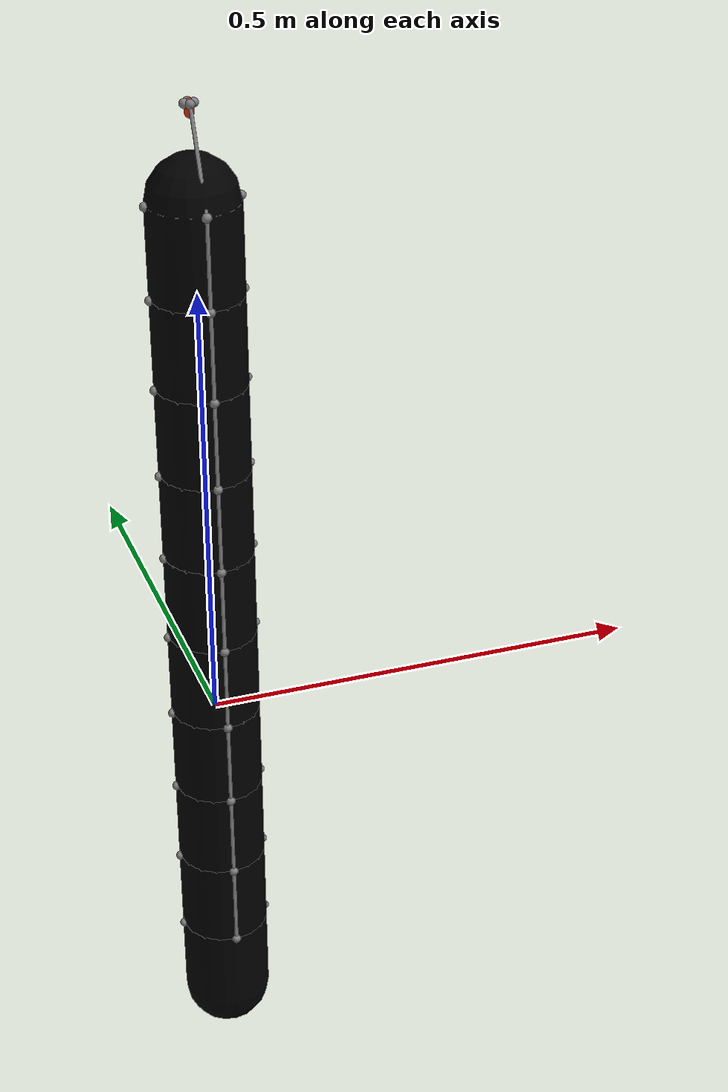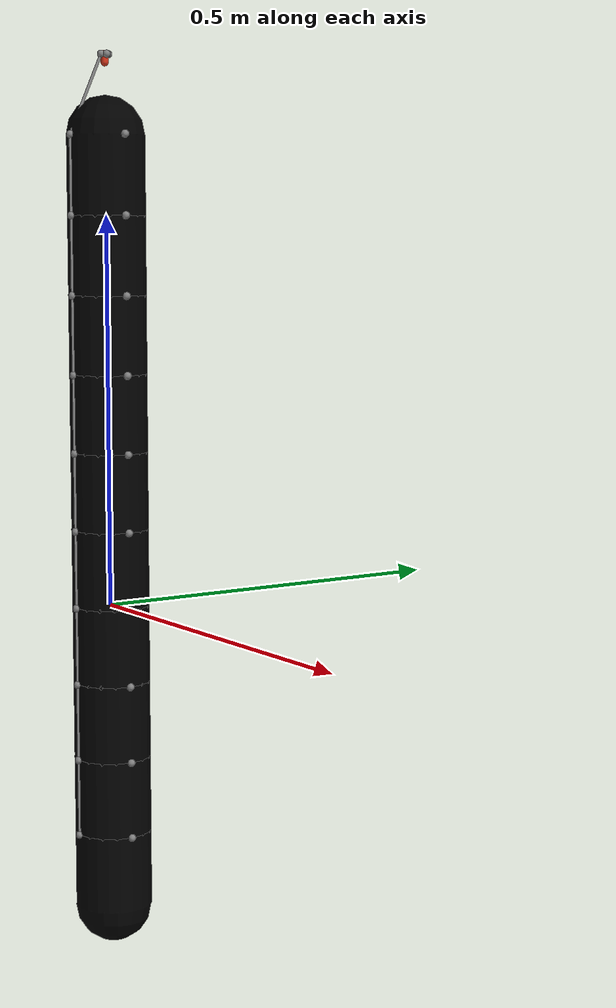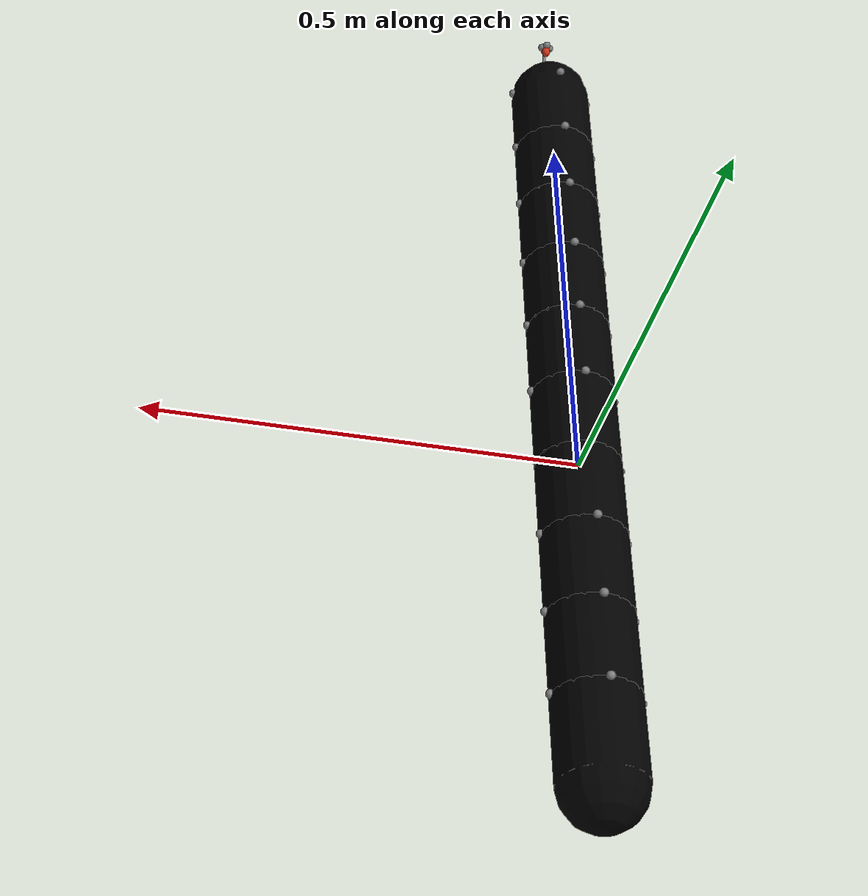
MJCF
<mujoco model="trunk">
        <compiler angle="radian"/>
        <extension>
            <plugin plugin="mujoco.elasticity.cable">
            <instance name="compositeactuated">
                <config key="twist" value="1e8"/>
                <config key="bend" value="1e8"/>
                <config key="vmax" value="0"/>
            </instance>
            </plugin>
        </extension>

        <asset>
            <texture type="skybox" builtin="gradient" rgb1=".6 .8 1" rgb2=".6 .8 1" width="1" height="1"/>
        </asset>

        <worldbody>
            <light pos="0 -1 -1" dir="0 -1 -1" diffuse="1 1 1"/>
            <body name="actuatedB_first" pos="0 0 0.7" quat="0 -0.707107 0 0.707107">
                <geom name="actuatedG0" size="0.005 0.005" pos="0.005 0 0" quat="0.707107 0 -0.707107 0" type="capsule" rgba="0.8 0.2 0.1 1"/>
                      <site name="cable_0_y_front" pos="0 0.005 0"/>
                    <site name="cable_0_y_back" pos="0 -0.005 0"/>
                    <site name="cable_0_z_front" pos="0 0 0.005"/>
                    <site name="cable_0_z_back" pos="0 0 -0.005"/>
        <body name="link_1" pos="0.1 0 0">
            <joint name="joint_1" pos="0 0 0" type="ball" group="3" actuatorfrclimited="false" armature="0.01" damping="0.25"/>
            <geom name="geom_1" size="0.05 0.05" density="0.1" pos="0.05 0 0" quat="0.707107 0 -0.707107 0" type="capsule" rgba="0 0 0 1"/>
            <site name="site_1_y_front" pos="0 0.05 0"/>
            <site name="site_1_y_back" pos="0 -0.05 0"/>
            <site name="site_1_z_front" pos="0 0 0.05"/>
            <site name="site_1_z_back" pos="0 0 -0.05"/>

        <body name="link_2" pos="0.1 0 0">
            <joint name="joint_2" pos="0 0 0" type="ball" group="3" actuatorfrclimited="false" armature="0.01" damping="0.25"/>
            <geom name="geom_2" size="0.05 0.05" density="0.1" pos="0.05 0 0" quat="0.707107 0 -0.707107 0" type="capsule" rgba="0 0 0 1"/>
            <site name="site_2_y_front" pos="0 0.05 0"/>
            <site name="site_2_y_back" pos="0 -0.05 0"/>
            <site name="site_2_z_front" pos="0 0 0.05"/>
            <site name="site_2_z_back" pos="0 0 -0.05"/>

        <body name="link_3" pos="0.1 0 0">
            <joint name="joint_3" pos="0 0 0" type="ball" group="3" actuatorfrclimited="false" armature="0.01" damping="0.25"/>
            <geom name="geom_3" size="0.05 0.05" density="0.1" pos="0.05 0 0" quat="0.707107 0 -0.707107 0" type="capsule" rgba="0 0 0 1"/>
            <site name="site_3_y_front" pos="0 0.05 0"/>
            <site name="site_3_y_back" pos="0 -0.05 0"/>
            <site name="site_3_z_front" pos="0 0 0.05"/>
            <site name="site_3_z_back" pos="0 0 -0.05"/>

        <body name="link_4" pos="0.1 0 0">
            <joint name="joint_4" pos="0 0 0" type="ball" group="3" actuatorfrclimited="false" armature="0.01" damping="0.25"/>
            <geom name="geom_4" size="0.05 0.05" density="0.1" pos="0.05 0 0" quat="0.707107 0 -0.707107 0" type="capsule" rgba="0 0 0 1"/>
            <site name="site_4_y_front" pos="0 0.05 0"/>
            <site name="site_4_y_back" pos="0 -0.05 0"/>
            <site name="site_4_z_front" pos="0 0 0.05"/>
            <site name="site_4_z_back" pos="0 0 -0.05"/>

        <body name="link_5" pos="0.1 0 0">
            <joint name="joint_5" pos="0 0 0" type="ball" group="3" actuatorfrclimited="false" armature="0.01" damping="0.25"/>
            <geom name="geom_5" size="0.05 0.05" density="0.1" pos="0.05 0 0" quat="0.707107 0 -0.707107 0" type="capsule" rgba="0 0 0 1"/>
            <site name="site_5_y_front" pos="0 0.05 0"/>
            <site name="site_5_y_back" pos="0 -0.05 0"/>
            <site name="site_5_z_front" pos="0 0 0.05"/>
            <site name="site_5_z_back" pos="0 0 -0.05"/>

        <body name="link_6" pos="0.1 0 0">
            <joint name="joint_6" pos="0 0 0" type="ball" group="3" actuatorfrclimited="false" armature="0.01" damping="0.25"/>
            <geom name="geom_6" size="0.05 0.05" density="0.1" pos="0.05 0 0" quat="0.707107 0 -0.707107 0" type="capsule" rgba="0 0 0 1"/>
            <site name="site_6_y_front" pos="0 0.05 0"/>
            <site name="site_6_y_back" pos="0 -0.05 0"/>
            <site name="site_6_z_front" pos="0 0 0.05"/>
            <site name="site_6_z_back" pos="0 0 -0.05"/>

        <body name="link_7" pos="0.1 0 0">
            <joint name="joint_7" pos="0 0 0" type="ball" group="3" actuatorfrclimited="false" armature="0.01" damping="0.25"/>
            <geom name="geom_7" size="0.05 0.05" density="0.1" pos="0.05 0 0" quat="0.707107 0 -0.707107 0" type="capsule" rgba="0 0 0 1"/>
            <site name="site_7_y_front" pos="0 0.05 0"/>
            <site name="site_7_y_back" pos="0 -0.05 0"/>
            <site name="site_7_z_front" pos="0 0 0.05"/>
            <site name="site_7_z_back" pos="0 0 -0.05"/>

        <body name="link_8" pos="0.1 0 0">
            <joint name="joint_8" pos="0 0 0" type="ball" group="3" actuatorfrclimited="false" armature="0.01" damping="0.25"/>
            <geom name="geom_8" size="0.05 0.05" density="0.1" pos="0.05 0 0" quat="0.707107 0 -0.707107 0" type="capsule" rgba="0 0 0 1"/>
            <site name="site_8_y_front" pos="0 0.05 0"/>
            <site name="site_8_y_back" pos="0 -0.05 0"/>
            <site name="site_8_z_front" pos="0 0 0.05"/>
            <site name="site_8_z_back" pos="0 0 -0.05"/>

        <body name="link_9" pos="0.1 0 0">
            <joint name="joint_9" pos="0 0 0" type="ball" group="3" actuatorfrclimited="false" armature="0.01" damping="0.25"/>
            <geom name="geom_9" size="0.05 0.05" density="0.1" pos="0.05 0 0" quat="0.707107 0 -0.707107 0" type="capsule" rgba="0 0 0 1"/>
            <site name="site_9_y_front" pos="0 0.05 0"/>
            <site name="site_9_y_back" pos="0 -0.05 0"/>
            <site name="site_9_z_front" pos="0 0 0.05"/>
            <site name="site_9_z_back" pos="0 0 -0.05"/>

        <body name="link_10" pos="0.1 0 0">
            <joint name="joint_10" pos="0 0 0" type="ball" group="3" actuatorfrclimited="false" armature="0.01" damping="0.25"/>
            <geom name="geom_10" size="0.05 0.05" density="0.1" pos="0.05 0 0" quat="0.707107 0 -0.707107 0" type="capsule" rgba="0 0 0 1"/>
            <site name="site_10_y_front" pos="0 0.05 0"/>
            <site name="site_10_y_back" pos="0 -0.05 0"/>
            <site name="site_10_z_front" pos="0 0 0.05"/>
            <site name="site_10_z_back" pos="0 0 -0.05"/>

        </body>

        </body>

        </body>

        </body>

        </body>

        </body>

        </body>

        </body>

        </body>

        </body>

            </body>
        </worldbody>

        <tendon>
            <spatial name="tendon_y_front" stiffness="0.0" damping="0.0" width="0.002">
    <site site="cable_0_y_front"/>
                <site site="site_1_y_front"/>
    <site site="site_2_y_front"/>
    <site site="site_3_y_front"/>
    <site site="site_4_y_front"/>
    <site site="site_5_y_front"/>
    <site site="site_6_y_front"/>
    <site site="site_7_y_front"/>
    <site site="site_8_y_front"/>
    <site site="site_9_y_front"/>
    <site site="site_10_y_front"/>
            </spatial>
        </tendon>

        <actuator>
            <muscle tendon="tendon_y_front"/>
        </actuator>

    </mujoco>
